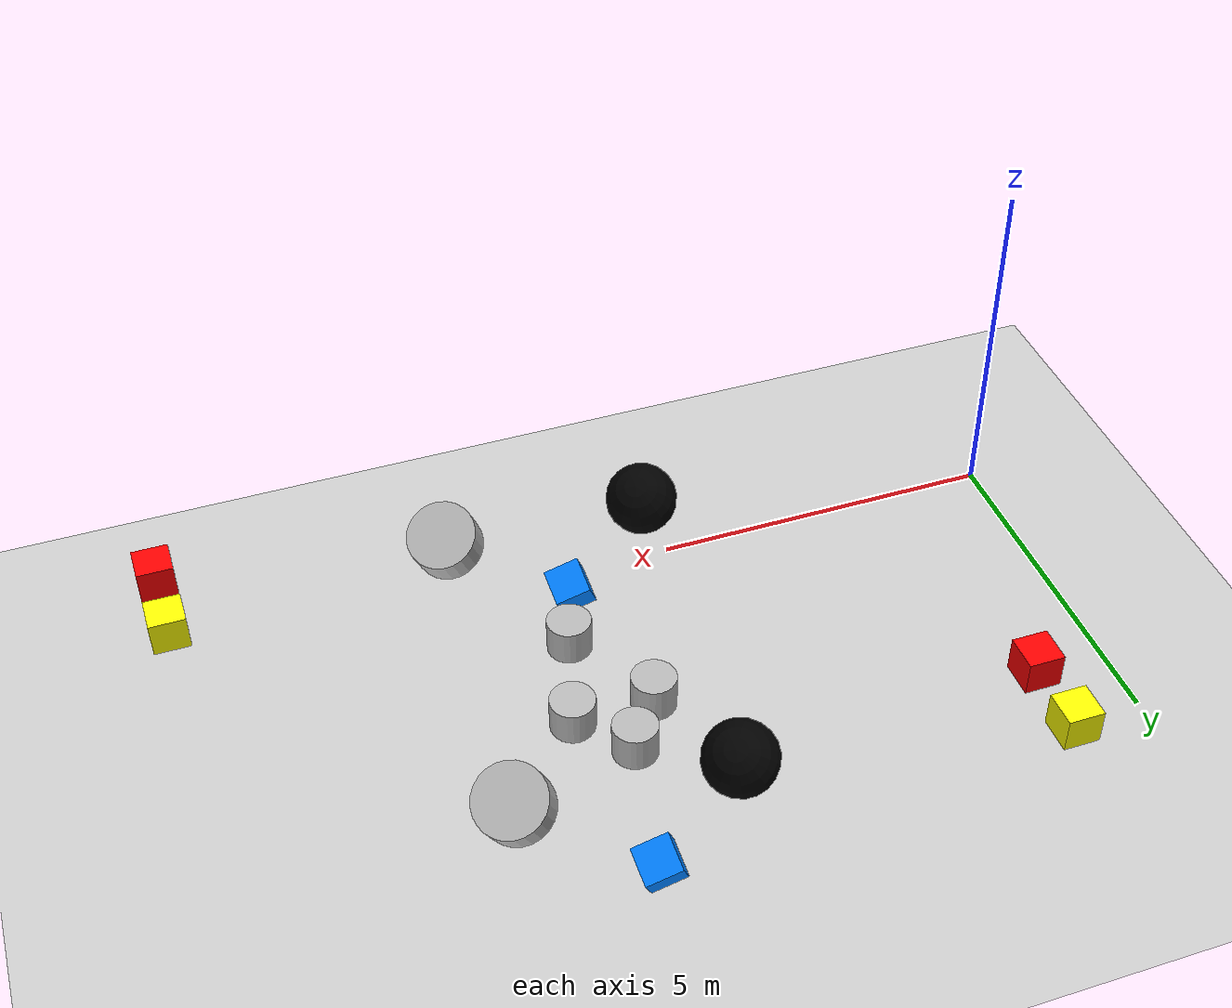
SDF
<sdf version="1.7">
 <world name="default">
  <model name="ground_plane">
   <static>1</static>
   <link name="link">
    <collision name="collision">
     <geometry><plane><normal>0 0 1</normal><size>100 100</size></plane></geometry>
     <surface>
      <contact><collide_bitmask>65535</collide_bitmask></contact>
      <friction><ode><mu>100</mu><mu2>50</mu2></ode></friction>
     </surface>
    </collision>
    <visual name="visual">
     <cast_shadows>0</cast_shadows>
     <geometry><plane><normal>0 0 1</normal><size>100 100</size></plane></geometry>
     <material>
      <script><uri>file://media/materials/scripts/gazebo.material</uri><name>Gazebo/Grey</name></script>
     </material>
    </visual>
   </link>
  </model>
  <gravity>0 0 -9.8</gravity>
  <magnetic_field>6e-06 2.3e-05 -4.2e-05</magnetic_field>
  <atmosphere type="adiabatic"/>
  <physics type="ode">
   <max_step_size>0.001</max_step_size>
   <real_time_factor>1</real_time_factor>
   <real_time_update_rate>1000</real_time_update_rate>
  </physics>
  <scene><ambient>0.4 0.4 0.4 1</ambient><background>0.7 0.7 0.7 1</background><shadows>1</shadows></scene>
  <audio><device>default</device></audio>
  <spherical_coordinates>
   <surface_model>EARTH_WGS84</surface_model>
   <latitude_deg>0</latitude_deg>
   <longitude_deg>0</longitude_deg>
   <elevation>0</elevation>
   <heading_deg>0</heading_deg>
  </spherical_coordinates>
  <model name="turtlebot3_drl_obstacle1">
   <pose>2.24864 -2.08182 0.061702 4e-06 -0 -5e-06</pose>
   <plugin name="obstacle1" filename="libobstacle1.so"/>
   <frame name="obstacle1::__model__" attached_to="obstacle1::link_obstacle1">
    <pose relative_to="__model__">5 4.5 1.3 0 -0 0</pose>
   </frame>
   <link name="obstacle1::link_obstacle1">
    <collision name="collision">
     <geometry><cylinder><radius>0.3</radius><length>0.5</length></cylinder></geometry>
    </collision>
    <visual name="visual">
     <geometry><cylinder><radius>0.3</radius><length>0.5</length></cylinder></geometry>
    </visual>
    <pose relative_to="obstacle1::__model__">0 0 0 0 -0 0</pose>
    <inertial>
     <inertia><ixx>1</ixx><ixy>0</ixy><ixz>0</ixz><iyy>1</iyy><iyz>0</iyz><izz>1</izz></inertia>
     <mass>1</mass>
    </inertial>
   </link>
   <plugin name="p3d_base_controller_obstacle1" filename="libgazebo_ros_p3d.so">
    <ros><namespace>/obstacle</namespace><remapping>odom:=odom</remapping></ros>
    <always_on>1</always_on>
    <update_rate>50.0</update_rate>
    <body_name>obstacle1::link_obstacle1</body_name>
    <topic_name>odom_obs</topic_name>
    <gaussian_noise>0.0</gaussian_noise>
    <frame_name>world</frame_name>
    <xyz_offset>0 0 0</xyz_offset>
    <rpy_offset>0 0 0</rpy_offset>
   </plugin>
  </model>
  <model name="turtlebot3_drl_obstacle2">
   <pose>0.037222 -1.76882 0.061816 -7e-06 8e-06 -1.6e-05</pose>
   <plugin name="obstacle2" filename="libobstacle2.so"/>
   <frame name="obstacle2::__model__" attached_to="obstacle2::link_obstacle2">
    <pose relative_to="__model__">6.5 5.5 1.3 0 -0 0</pose>
   </frame>
   <link name="obstacle2::link_obstacle2">
    <collision name="collision">
     <geometry><cylinder><radius>0.3</radius><length>0.5</length></cylinder></geometry>
    </collision>
    <visual name="visual">
     <geometry><cylinder><radius>0.3</radius><length>0.5</length></cylinder></geometry>
    </visual>
    <pose relative_to="obstacle2::__model__">0 0 0 0 -0 0</pose>
    <inertial>
     <inertia><ixx>1</ixx><ixy>0</ixy><ixz>0</ixz><iyy>1</iyy><iyz>0</iyz><izz>1</izz></inertia>
     <mass>1</mass>
    </inertial>
   </link>
   <plugin name="p3d_base_controller_obstacle2" filename="libgazebo_ros_p3d.so">
    <ros><namespace>/obstacle</namespace><remapping>odom:=odom</remapping></ros>
    <always_on>1</always_on>
    <update_rate>50.0</update_rate>
    <body_name>obstacle2::link_obstacle2</body_name>
    <topic_name>odom_obs</topic_name>
    <gaussian_noise>0.0</gaussian_noise>
    <frame_name>world</frame_name>
    <xyz_offset>0 0 0</xyz_offset>
    <rpy_offset>0 0 0</rpy_offset>
   </plugin>
  </model>
  <model name="turtlebot3_drl_obstacle3">
   <pose>1.62811 1.69378 0.142034 -0.039608 6.8e-05 1.4e-05</pose>
   <plugin name="obstacle3" filename="libobstacle3.so"/>
   <frame name="obstacle3::__model__" attached_to="obstacle3::link_obstacle3">
    <pose relative_to="__model__">6 2 1.3 0 -0 0</pose>
   </frame>
   <link name="obstacle3::link_obstacle3">
    <collision name="collision">
     <geometry><cylinder><radius>0.3</radius><length>0.5</length></cylinder></geometry>
    </collision>
    <visual name="visual">
     <geometry><cylinder><radius>0.3</radius><length>0.5</length></cylinder></geometry>
    </visual>
    <pose relative_to="obstacle3::__model__">0 0 0 0 -0 0</pose>
    <inertial>
     <inertia><ixx>1</ixx><ixy>0</ixy><ixz>0</ixz><iyy>1</iyy><iyz>0</iyz><izz>1</izz></inertia>
     <mass>1</mass>
    </inertial>
   </link>
   <plugin name="p3d_base_controller_obstacle3" filename="libgazebo_ros_p3d.so">
    <ros><namespace>/obstacle</namespace><remapping>odom:=odom</remapping></ros>
    <always_on>1</always_on>
    <update_rate>50.0</update_rate>
    <body_name>obstacle3::link_obstacle3</body_name>
    <topic_name>odom_obs</topic_name>
    <gaussian_noise>0.0</gaussian_noise>
    <frame_name>world</frame_name>
    <xyz_offset>0 0 0</xyz_offset>
    <rpy_offset>0 0 0</rpy_offset>
   </plugin>
  </model>
  <model name="turtlebot3_drl_obstacle4">
   <pose>-2.47851 2.40215 0.049726 -1e-06 -0 -1e-06</pose>
   <plugin name="obstacle4" filename="libobstacle4.so"/>
   <frame name="obstacle4::__model__" attached_to="obstacle4::link_obstacle4">
    <pose relative_to="__model__">9.5 2 1.3 0 -0 0</pose>
   </frame>
   <link name="obstacle4::link_obstacle4">
    <collision name="collision">
     <geometry><cylinder><radius>0.3</radius><length>0.5</length></cylinder></geometry>
    </collision>
    <visual name="visual">
     <geometry><cylinder><radius>0.3</radius><length>0.5</length></cylinder></geometry>
    </visual>
    <pose relative_to="obstacle4::__model__">0 0 0 0 -0 0</pose>
    <inertial>
     <inertia><ixx>1</ixx><ixy>0</ixy><ixz>0</ixz><iyy>1</iyy><iyz>0</iyz><izz>1</izz></inertia>
     <mass>1</mass>
    </inertial>
   </link>
   <plugin name="p3d_base_controller_obstacle4" filename="libgazebo_ros_p3d.so">
    <ros><namespace>/obstacle</namespace><remapping>odom:=odom</remapping></ros>
    <always_on>1</always_on>
    <update_rate>50.0</update_rate>
    <body_name>obstacle4::link_obstacle4</body_name>
    <topic_name>odom_obs</topic_name>
    <gaussian_noise>0.0</gaussian_noise>
    <frame_name>world</frame_name>
    <xyz_offset>0 0 0</xyz_offset>
    <rpy_offset>0 0 0</rpy_offset>
   </plugin>
  </model>
  <model name="turtlebot3_drl_obstacle4">
   <pose>-2.47851 2.40215 0.049726 -1e-06 -0 -1e-06</pose>
   <plugin name="obstacle4" filename="libobstacle4.so"/>
   <frame name="obstacle4::__model__" attached_to="obstacle4::link_obstacle4">
    <pose relative_to="__model__">9.5 2 1.3 0 -0 0</pose>
   </frame>
   <link name="obstacle4::link_obstacle4">
    <collision name="collision">
     <geometry><cylinder><radius>0.3</radius><length>0.5</length></cylinder></geometry>
    </collision>
    <visual name="visual">
     <geometry><cylinder><radius>0.3</radius><length>0.5</length></cylinder></geometry>
    </visual>
    <pose relative_to="obstacle4::__model__">0 0 0 0 -0 0</pose>
    <inertial>
     <inertia><ixx>1</ixx><ixy>0</ixy><ixz>0</ixz><iyy>1</iyy><iyz>0</iyz><izz>1</izz></inertia>
     <mass>1</mass>
    </inertial>
   </link>
   <plugin name="p3d_base_controller_obstacle4" filename="libgazebo_ros_p3d.so">
    <ros><namespace>/obstacle</namespace><remapping>odom:=odom</remapping></ros>
    <always_on>1</always_on>
    <update_rate>50.0</update_rate>
    <body_name>obstacle4::link_obstacle4</body_name>
    <topic_name>odom_obs</topic_name>
    <gaussian_noise>0.0</gaussian_noise>
    <frame_name>world</frame_name>
    <xyz_offset>0 0 0</xyz_offset>
    <rpy_offset>0 0 0</rpy_offset>
   </plugin>
  </model>
  <light name="user_directional_light_0" type="directional">
   <pose>5.92611 3.87759 1 0 -0 0</pose>
   <diffuse>0.5 0.5 0.5 1</diffuse>
   <specular>0.1 0.1 0.1 1</specular>
   <direction>0.1 0.1 -0.9</direction>
   <attenuation>
    <range>20</range>
    <constant>0.5</constant>
    <linear>0.01</linear>
    <quadratic>0.001</quadratic>
   </attenuation>
   <spot><inner_angle>0</inner_angle><outer_angle>0</outer_angle><falloff>0</falloff></spot>
  </light>
  <light name="user_point_light_0" type="point">
   <pose>7.74204 2.38082 1 0 -0 0</pose>
   <diffuse>0.5 0.5 0.5 1</diffuse>
   <specular>0.1 0.1 0.1 1</specular>
   <attenuation>
    <range>20</range>
    <constant>0.5</constant>
    <linear>0.01</linear>
    <quadratic>0.001</quadratic>
   </attenuation>
   <cast_shadows>0</cast_shadows>
   <direction>0 0 -1</direction>
   <spot><inner_angle>0</inner_angle><outer_angle>0</outer_angle><falloff>0</falloff></spot>
  </light>
  <light name="user_spot_light_0" type="spot">
   <pose>2.4624 1.17686 1 0 -0 0</pose>
   <diffuse>0.5 0.5 0.5 1</diffuse>
   <specular>0.1 0.1 0.1 1</specular>
   <direction>0 0 -1</direction>
   <attenuation>
    <range>20</range>
    <constant>0.5</constant>
    <linear>0.01</linear>
    <quadratic>0.001</quadratic>
   </attenuation>
   <cast_shadows>0</cast_shadows>
   <spot><inner_angle>0.6</inner_angle><outer_angle>1</outer_angle><falloff>1</falloff></spot>
  </light>
  <light name="user_spot_light_1" type="spot">
   <pose>12.1106 6.3566 1 0 -0 0</pose>
   <diffuse>0.5 0.5 0.5 1</diffuse>
   <specular>0.1 0.1 0.1 1</specular>
   <direction>0 0 -1</direction>
   <attenuation>
    <range>20</range>
    <constant>0.5</constant>
    <linear>0.01</linear>
    <quadratic>0.001</quadratic>
   </attenuation>
   <cast_shadows>0</cast_shadows>
   <spot><inner_angle>0.6</inner_angle><outer_angle>1</outer_angle><falloff>1</falloff></spot>
  </light>
  <light name="user_spot_light_2" type="spot">
   <pose>7.29605 3.79652 1 0 -0 0</pose>
   <diffuse>0.5 0.5 0.5 1</diffuse>
   <specular>0.1 0.1 0.1 1</specular>
   <direction>0 0 -1</direction>
   <attenuation>
    <range>20</range>
    <constant>0.5</constant>
    <linear>0.01</linear>
    <quadratic>0.001</quadratic>
   </attenuation>
   <cast_shadows>0</cast_shadows>
   <spot><inner_angle>0.6</inner_angle><outer_angle>1</outer_angle><falloff>1</falloff></spot>
  </light>
  <model name="testingbox">
   <link name="link">
    <inertial>
     <mass>1</mass>
     <inertia>
      <ixx>0.166667</ixx>
      <ixy>0</ixy>
      <ixz>0</ixz>
      <iyy>0.166667</iyy>
      <iyz>0</iyz>
      <izz>0.166667</izz>
     </inertia>
    </inertial>
    <pose>-1.92827 1.03581 -0 0 -0 0</pose>
    <visual name="visual">
     <geometry><box><size>0.5 0.5 0.5</size></box></geometry>
     <material>
      <ambient>1 1 0 1</ambient>
      <diffuse>1 1 0 1</diffuse>
      <specular>0.5 0.5 0.5 1</specular>
      <emissive>0.2 0.2 0 1</emissive>
     </material>
    </visual>
    <collision name="collision">
     <geometry><box><size>0.5 0.5 0.5</size></box></geometry>
     <surface>
      <friction>
       <ode><mu>1</mu><mu2>1</mu2><fdir1>0 0 0</fdir1><slip1>0</slip1><slip2>0</slip2></ode>
       <torsional>
        <coefficient>1</coefficient>
        <patch_radius>0</patch_radius>
        <surface_radius>0</surface_radius>
        <use_patch_radius>1</use_patch_radius>
        <ode><slip>0</slip></ode>
       </torsional>
      </friction>
      <bounce><restitution_coefficient>0</restitution_coefficient><threshold>1e+06</threshold></bounce>
      <contact>
       <collide_without_contact>0</collide_without_contact>
       <collide_without_contact_bitmask>1</collide_without_contact_bitmask>
       <collide_bitmask>1</collide_bitmask>
       <ode>
        <soft_cfm>0</soft_cfm>
        <soft_erp>0.2</soft_erp>
        <kp>1e+13</kp>
        <kd>1</kd>
        <max_vel>0.01</max_vel>
        <min_depth>0</min_depth>
       </ode>
       <bullet>
        <split_impulse>1</split_impulse>
        <split_impulse_penetration_threshold>-0.01</split_impulse_penetration_threshold>
        <soft_cfm>0</soft_cfm>
        <soft_erp>0.2</soft_erp>
        <kp>1e+13</kp>
        <kd>1</kd>
       </bullet>
      </contact>
     </surface>
    </collision>
   </link>
   <link name="link_clone">
    <inertial>
     <mass>1</mass>
     <inertia>
      <ixx>0.166667</ixx>
      <ixy>0</ixy>
      <ixz>0</ixz>
      <iyy>0.166667</iyy>
      <iyz>0</iyz>
      <izz>0.166667</izz>
     </inertia>
    </inertial>
    <pose>-1.92219 0.021155 -0 0 -0 7e-05</pose>
    <visual name="visual">
     <geometry><box><size>0.5 0.5 0.5</size></box></geometry>
     <material>
      <ambient>1 0 0 1</ambient>
      <diffuse>1 0 0 1</diffuse>
      <specular>0.5 0.5 0.5 1</specular>
      <emissive>0.2 0 0 1</emissive>
     </material>
    </visual>
    <collision name="collision">
     <geometry><box><size>0.5 0.5 0.5</size></box></geometry>
     <surface>
      <friction>
       <ode><mu>1</mu><mu2>1</mu2><fdir1>0 0 0</fdir1><slip1>0</slip1><slip2>0</slip2></ode>
       <torsional>
        <coefficient>1</coefficient>
        <patch_radius>0</patch_radius>
        <surface_radius>0</surface_radius>
        <use_patch_radius>1</use_patch_radius>
        <ode><slip>0</slip></ode>
       </torsional>
      </friction>
      <bounce><restitution_coefficient>0</restitution_coefficient><threshold>1e+06</threshold></bounce>
      <contact>
       <collide_without_contact>0</collide_without_contact>
       <collide_without_contact_bitmask>1</collide_without_contact_bitmask>
       <collide_bitmask>1</collide_bitmask>
       <ode>
        <soft_cfm>0</soft_cfm>
        <soft_erp>0.2</soft_erp>
        <kp>1e+13</kp>
        <kd>1</kd>
        <max_vel>0.01</max_vel>
        <min_depth>0</min_depth>
       </ode>
       <bullet>
        <split_impulse>1</split_impulse>
        <split_impulse_penetration_threshold>-0.01</split_impulse_penetration_threshold>
        <soft_cfm>0</soft_cfm>
        <soft_erp>0.2</soft_erp>
        <kp>1e+13</kp>
        <kd>1</kd>
       </bullet>
      </contact>
     </surface>
    </collision>
   </link>
   <static>0</static>
   <pose>3.6307 4.9027 1.36173 -1e-06 0 -0.000781</pose>
  </model>
  <model name="boxgroup">
   <link name="link_0">
    <inertial>
     <mass>1</mass>
     <inertia><ixx>0.1</ixx><ixy>0</ixy><ixz>0</ixz><iyy>0.1</iyy><iyz>0</iyz><izz>0.1</izz></inertia>
    </inertial>
    <pose>-1.38989 -0.049403 0 0 -0 0</pose>
    <visual name="visual">
     <geometry><sphere><radius>0.5</radius></sphere></geometry>
     <material>
      <lighting>1</lighting>
      <ambient>0 0 0 1</ambient>
      <diffuse>0 0 0 1</diffuse>
      <specular>0.1 0.1 0.1 1</specular>
     </material>
    </visual>
    <collision name="collision"><geometry><sphere><radius>0.5</radius></sphere></geometry></collision>
   </link>
   <link name="link_1">
    <inertial>
     <mass>1</mass>
     <inertia>
      <ixx>0.166667</ixx>
      <ixy>0</ixy>
      <ixz>0</ixz>
      <iyy>0.166667</iyy>
      <iyz>0</iyz>
      <izz>0.166667</izz>
     </inertia>
    </inertial>
    <pose>0.002317 0.720193 0 0 -0 0</pose>
    <visual name="visual">
     <geometry><box><size>0.5 0.5 0.5</size></box></geometry>
     <material>
      <lighting>1</lighting>
      <ambient>0 0.5 1 1</ambient>
      <diffuse>0 0.5 1 1</diffuse>
      <specular>0.1 0.1 0.1 1</specular>
     </material>
    </visual>
    <collision name="collision"><geometry><box><size>0.5 0.5 0.5</size></box></geometry></collision>
   </link>
   <link name="link_2">
    <inertial>
     <mass>1</mass>
     <inertia><ixx>0.145833</ixx><ixy>0</ixy><ixz>0</ixz><iyy>0.145833</iyy><iyz>0</iyz><izz>0.125</izz></inertia>
    </inertial>
    <pose>1.38758 -0.670795 0 0 -0 0</pose>
    <visual name="visual">
     <geometry><cylinder><radius>0.5</radius><length>0.5</length></cylinder></geometry>
     <material>
      <lighting>1</lighting>
      <ambient>0.7 0.7 0.7 1</ambient>
      <diffuse>0.7 0.7 0.7 1</diffuse>
      <specular>0.1 0.1 0.1 1</specular>
     </material>
    </visual>
    <collision name="collision">
     <geometry><cylinder><radius>0.5</radius><length>0.5</length></cylinder></geometry>
    </collision>
   </link>
   <static>0</static>
   <pose>7.30793 5.30568 1.15337 -0.428505 0.312137 -0.058155</pose>
  </model>
  <model name="testingbox_clone">
   <link name="link">
    <inertial>
     <mass>1</mass>
     <inertia>
      <ixx>0.166667</ixx>
      <ixy>0</ixy>
      <ixz>0</ixz>
      <iyy>0.166667</iyy>
      <iyz>0</iyz>
      <izz>0.166667</izz>
     </inertia>
    </inertial>
    <pose>-1.92827 1.03581 -0 0 -0 0</pose>
    <visual name="visual">
     <geometry><box><size>0.5 0.5 0.5</size></box></geometry>
     <material>
      <ambient>1 1 0 1</ambient>
      <diffuse>1 1 0 1</diffuse>
      <specular>0.5 0.5 0.5 1</specular>
      <emissive>0.2 0.2 0 1</emissive>
     </material>
    </visual>
    <collision name="collision">
     <geometry><box><size>0.5 0.5 0.5</size></box></geometry>
     <surface>
      <friction>
       <ode><mu>1</mu><mu2>1</mu2><fdir1>0 0 0</fdir1><slip1>0</slip1><slip2>0</slip2></ode>
       <torsional>
        <coefficient>1</coefficient>
        <patch_radius>0</patch_radius>
        <surface_radius>0</surface_radius>
        <use_patch_radius>1</use_patch_radius>
        <ode><slip>0</slip></ode>
       </torsional>
      </friction>
      <bounce><restitution_coefficient>0</restitution_coefficient><threshold>1e+06</threshold></bounce>
      <contact>
       <collide_without_contact>0</collide_without_contact>
       <collide_without_contact_bitmask>1</collide_without_contact_bitmask>
       <collide_bitmask>1</collide_bitmask>
       <ode>
        <soft_cfm>0</soft_cfm>
        <soft_erp>0.2</soft_erp>
        <kp>1e+13</kp>
        <kd>1</kd>
        <max_vel>0.01</max_vel>
        <min_depth>0</min_depth>
       </ode>
       <bullet>
        <split_impulse>1</split_impulse>
        <split_impulse_penetration_threshold>-0.01</split_impulse_penetration_threshold>
        <soft_cfm>0</soft_cfm>
        <soft_erp>0.2</soft_erp>
        <kp>1e+13</kp>
        <kd>1</kd>
       </bullet>
      </contact>
     </surface>
    </collision>
   </link>
   <link name="link_clone">
    <inertial>
     <mass>1</mass>
     <inertia>
      <ixx>0.166667</ixx>
      <ixy>0</ixy>
      <ixz>0</ixz>
      <iyy>0.166667</iyy>
      <iyz>0</iyz>
      <izz>0.166667</izz>
     </inertia>
    </inertial>
    <pose>-1.92219 0.021155 -0 0 -0 7e-05</pose>
    <visual name="visual">
     <geometry><box><size>0.5 0.5 0.5</size></box></geometry>
     <material>
      <ambient>1 0 0 1</ambient>
      <diffuse>1 0 0 1</diffuse>
      <specular>0.5 0.5 0.5 1</specular>
      <emissive>0.2 0 0 1</emissive>
     </material>
    </visual>
    <collision name="collision">
     <geometry><box><size>0.5 0.5 0.5</size></box></geometry>
     <surface>
      <friction>
       <ode><mu>1</mu><mu2>1</mu2><fdir1>0 0 0</fdir1><slip1>0</slip1><slip2>0</slip2></ode>
       <torsional>
        <coefficient>1</coefficient>
        <patch_radius>0</patch_radius>
        <surface_radius>0</surface_radius>
        <use_patch_radius>1</use_patch_radius>
        <ode><slip>0</slip></ode>
       </torsional>
      </friction>
      <bounce><restitution_coefficient>0</restitution_coefficient><threshold>1e+06</threshold></bounce>
      <contact>
       <collide_without_contact>0</collide_without_contact>
       <collide_without_contact_bitmask>1</collide_without_contact_bitmask>
       <collide_bitmask>1</collide_bitmask>
       <ode>
        <soft_cfm>0</soft_cfm>
        <soft_erp>0.2</soft_erp>
        <kp>1e+13</kp>
        <kd>1</kd>
        <max_vel>0.01</max_vel>
        <min_depth>0</min_depth>
       </ode>
       <bullet>
        <split_impulse>1</split_impulse>
        <split_impulse_penetration_threshold>-0.01</split_impulse_penetration_threshold>
        <soft_cfm>0</soft_cfm>
        <soft_erp>0.2</soft_erp>
        <kp>1e+13</kp>
        <kd>1</kd>
       </bullet>
      </contact>
     </surface>
    </collision>
   </link>
   <static>0</static>
   <pose>14.1342 -0.553195 1.36172 -3e-06 2e-06 -0.001146</pose>
  </model>
  <model name="boxgroup_clone">
   <link name="link_0">
    <inertial>
     <mass>1</mass>
     <inertia><ixx>0.1</ixx><ixy>0</ixy><ixz>0</ixz><iyy>0.1</iyy><iyz>0</iyz><izz>0.1</izz></inertia>
    </inertial>
    <pose>-1.38989 -0.049403 0 0 -0 0</pose>
    <visual name="visual">
     <geometry><sphere><radius>0.5</radius></sphere></geometry>
     <material>
      <lighting>1</lighting>
      <ambient>0 0 0 1</ambient>
      <diffuse>0 0 0 1</diffuse>
      <specular>0.1 0.1 0.1 1</specular>
     </material>
    </visual>
    <collision name="collision"><geometry><sphere><radius>0.5</radius></sphere></geometry></collision>
   </link>
   <link name="link_1">
    <inertial>
     <mass>1</mass>
     <inertia>
      <ixx>0.166667</ixx>
      <ixy>0</ixy>
      <ixz>0</ixz>
      <iyy>0.166667</iyy>
      <iyz>0</iyz>
      <izz>0.166667</izz>
     </inertia>
    </inertial>
    <pose>0.002317 0.720193 0 0 -0 0</pose>
    <visual name="visual">
     <geometry><box><size>0.5 0.5 0.5</size></box></geometry>
     <material>
      <lighting>1</lighting>
      <ambient>0 0.5 1 1</ambient>
      <diffuse>0 0.5 1 1</diffuse>
      <specular>0.1 0.1 0.1 1</specular>
     </material>
    </visual>
    <collision name="collision"><geometry><box><size>0.5 0.5 0.5</size></box></geometry></collision>
   </link>
   <link name="link_2">
    <inertial>
     <mass>1</mass>
     <inertia><ixx>0.145833</ixx><ixy>0</ixy><ixz>0</ixz><iyy>0.145833</iyy><iyz>0</iyz><izz>0.125</izz></inertia>
    </inertial>
    <pose>1.38758 -0.670795 0 0 -0 0</pose>
    <visual name="visual">
     <geometry><cylinder><radius>0.5</radius><length>0.5</length></cylinder></geometry>
     <material>
      <lighting>1</lighting>
      <ambient>0.7 0.7 0.7 1</ambient>
      <diffuse>0.7 0.7 0.7 1</diffuse>
      <specular>0.1 0.1 0.1 1</specular>
     </material>
    </visual>
    <collision name="collision">
     <geometry><cylinder><radius>0.5</radius><length>0.5</length></cylinder></geometry>
    </collision>
   </link>
   <static>0</static>
   <pose>6.88039 0.44861 1.15336 -0.428502 0.312138 -0.058154</pose>
  </model>
 </world>
</sdf>
